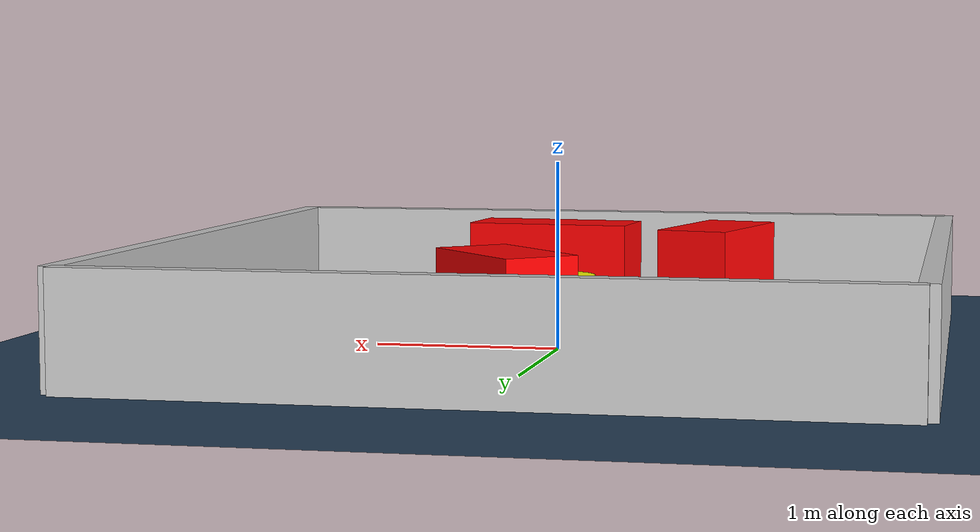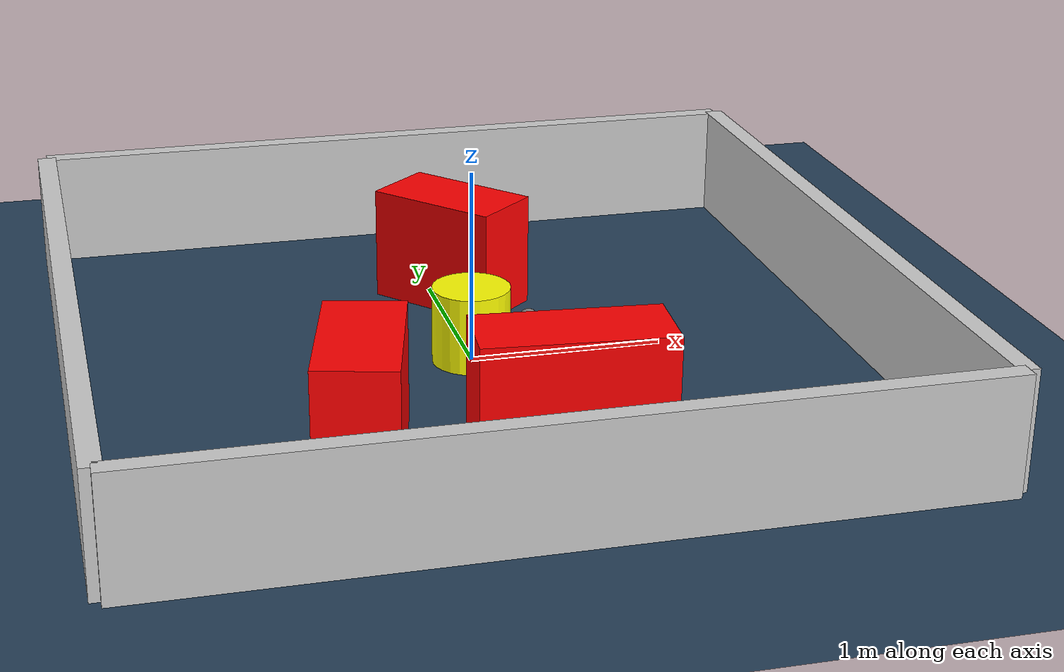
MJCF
<?xml version="1.0" ?>
<mujoco model="generated_environment">
  <option timestep="0.01" integrator="RK4" cone="elliptic"/>
  <default>
    <geom density="1"/>
  </default>
  <asset>
    <texture builtin="gradient" height="3072" rgb1="0.3 0.5 0.7" rgb2="0 0 0" type="skybox" width="512"/>
    <texture builtin="checker" height="300" mark="edge" markrgb="0.8 0.8 0.8" name="groundplane" rgb1="0.2 0.3 0.4" rgb2="0.1 0.2 0.3" type="2d" width="300"/>
    <material name="groundplane" reflectance="0.2" texrepeat="5 5" texture="groundplane" texuniform="true"/>
    <material name="robot" rgba="0.0 1.0 0.0 1"/>
  </asset>
  <worldbody>
    <light dir="0 0 -1" directional="true" pos="0 0 1.5"/>
    <geom condim="4" friction="1.0 0.005 0.001" material="groundplane" name="floor" size="0 0 0.05" type="plane"/>
    <body name="walls">
      <geom name="wall_1" condim="4" pos="-2.0 0.0 0.3" rgba="0.800000011920929 0.800000011920929 0.800000011920929 1.0" size="0.05 2.0 0.3" type="box"/>
      <geom name="wall_2" condim="4" pos="2.0 0.0 0.3" rgba="0.800000011920929 0.800000011920929 0.800000011920929 1.0" size="0.05 2.0 0.3" type="box"/>
      <geom name="wall_3" condim="4" pos="0.0 -2.0 0.3" rgba="0.800000011920929 0.800000011920929 0.800000011920929 1.0" size="2.0 0.05 0.3" type="box"/>
      <geom name="wall_4" condim="4" pos="0.0 2.0 0.3" rgba="0.800000011920929 0.800000011920929 0.800000011920929 1.0" size="2.0 0.05 0.3" type="box"/>
    </body>
    <body name="robot">
      <joint name="joint_x" type="slide" pos="0 0 0" axis="1 0 0"/>
      <joint name="joint_y" type="slide" pos="0 0 0" axis="0 1 0"/>
      <geom name="robot" type="sphere" pos="0.3 0.0 0.2" size="0.05" mass="5." friction="1.0 0.005 0.0001" condim="4" rgba="0.5 0.5 0.5 1.0"/>
      <site name="sensor_ball"/>
    </body>
    <body name="obstacle_movable_1">
      <geom name="obstacle_movable_1" condim="4" pos="0.0 0.0 0.2" euler="0 0 0.0" friction="1.0 0.005 0.001" rgba="1.0 1.0 0.0 1.0" size="0.2 0.2 0.0" type="cylinder" mass="0.1"/>
      <joint type="free"/>
    </body>
    <body name="obstacle_2_static">
      <geom name="obstacle_2_static" condim="4" pos="0.22184682316619742 -1.0691073870301715 0.3" euler="0 0 175.10868036659807" friction="1.0 0.005 0.001" rgba="1 0 0 1" size="0.46311753951435797 0.2 0.3" type="box"/>
    </body>
    <body name="obstacle_3_static">
      <geom name="obstacle_3_static" condim="4" pos="0.09658056508460922 0.8556630463484167 0.3" euler="0 0 311.3621167001483" friction="1.0 0.005 0.001" rgba="1 0 0 1" size="0.36407416442666435 0.2 0.3" type="box"/>
    </body>
    <body name="obstacle_4_static">
      <geom name="obstacle_4_static" condim="4" pos="-0.7406302196089007 -0.9438144670436927 0.3" euler="0 0 256.10164181733614" friction="1.0 0.005 0.001" rgba="1 0 0 1" size="0.4064563385204238 0.2 0.3" type="box"/>
    </body>
  </worldbody>
  <actuator>
    <motor name="actuator_x" joint="joint_x" gear="1" ctrlrange="-1 1"/>
    <motor name="actuator_y" joint="joint_y" gear="1" ctrlrange="-1 1"/>
  </actuator>
</mujoco>
